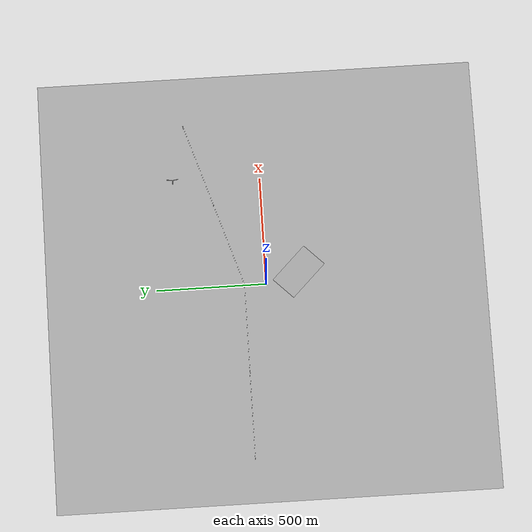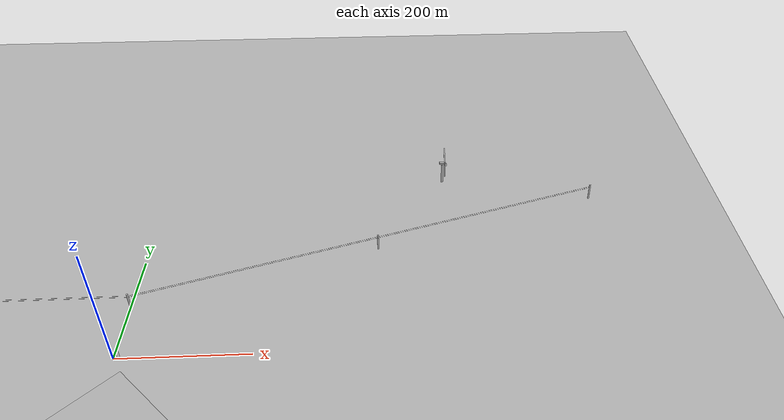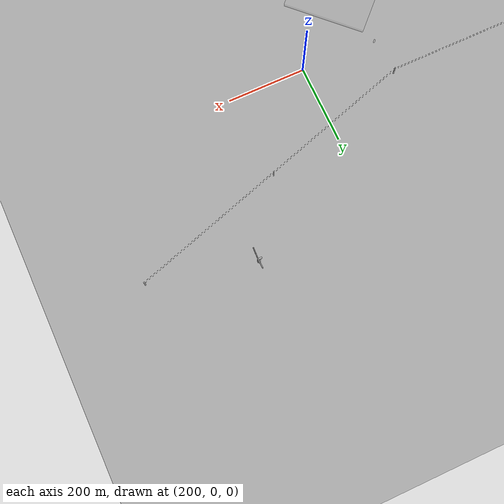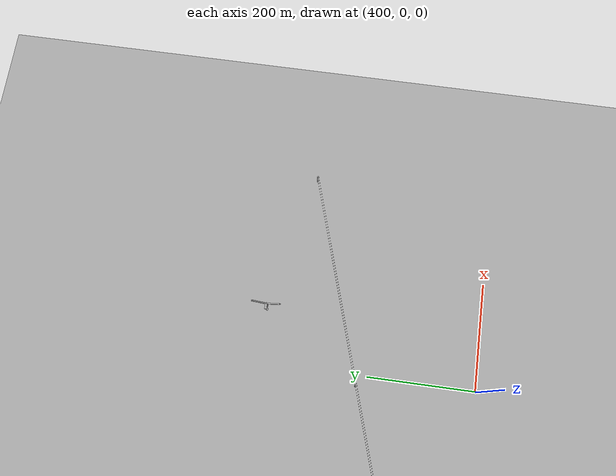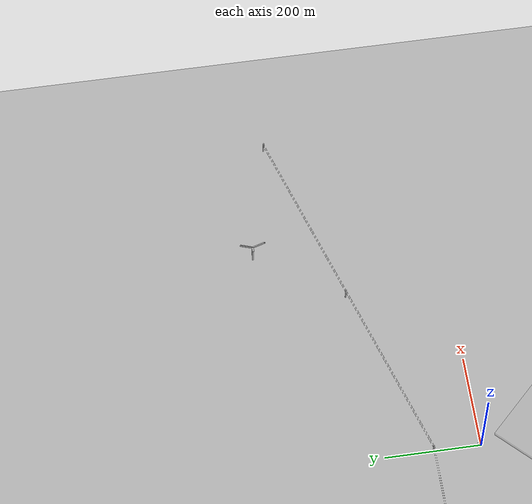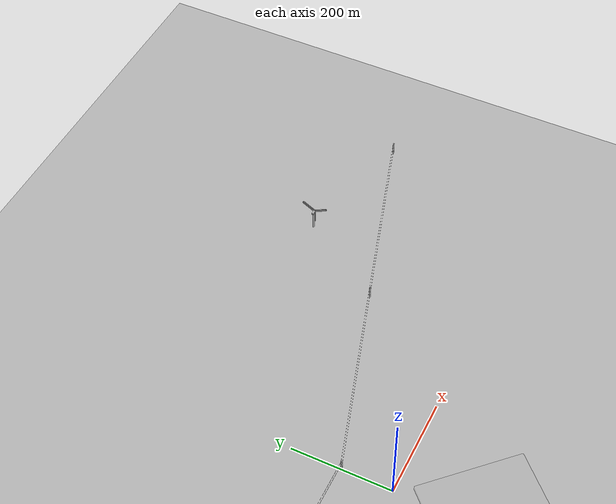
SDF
<sdf version="1.6">
 <world name="arenosillo">
  <physics type="ode">
   <ode>
    <solver><type>quick</type><iters>10</iters><sor>1.3</sor></solver>
    <constraints>
     <cfm>0</cfm>
     <erp>0.2</erp>
     <contact_max_correcting_vel>100</contact_max_correcting_vel>
     <contact_surface_layer>0.001</contact_surface_layer>
    </constraints>
   </ode>
   <max_step_size>0.002</max_step_size>
   <real_time_update_rate>500</real_time_update_rate>
   <real_time_factor>1</real_time_factor>
   <gravity>0 0 -9.8</gravity>
   <magnetic_field>6e-06 2.3e-05 -4.2e-05</magnetic_field>
  </physics>
  <include><uri>model://sun</uri></include>
  <include><uri>model://arenosillo</uri></include>
  <model name="WT_tower">
   <static>1</static>
   <link name="link">
    <collision name="collision">
     <geometry><cylinder><radius>1</radius><length>20</length></cylinder></geometry>
    </collision>
    <visual name="visual"><geometry><cylinder><radius>2</radius><length>40</length></cylinder></geometry></visual>
   </link>
   <pose>500 400 20 0 -0 0</pose>
  </model>
  <model name="WT_engine">
   <static>1</static>
   <link name="link">
    <collision name="collision"><geometry><box><size>4 4 10</size></box></geometry></collision>
    <visual name="visual"><geometry><box><size>4 4 10</size></box></geometry></visual>
   </link>
   <pose>500 400 42.5 0 1.57 0</pose>
  </model>
  <model name="WT_blade_center">
   <static>1</static>
   <link name="link">
    <collision name="collision"><geometry><sphere><radius>2</radius></sphere></geometry></collision>
    <visual name="visual"><geometry><sphere><radius>2</radius></sphere></geometry></visual>
   </link>
   <pose>505 400 42.5 0 1.57 0</pose>
  </model>
  <model name="WT_blade_1">
   <static>1</static>
   <link name="link">
    <collision name="collision"><geometry><box><size>2 4 30</size></box></geometry></collision>
    <visual name="visual"><geometry><box><size>2 4 30</size></box></geometry></visual>
   </link>
   <pose>505 400 27.5 0 -0 0</pose>
  </model>
  <model name="WT_blade_2">
   <static>1</static>
   <link name="link">
    <collision name="collision"><geometry><box><size>2 4 30</size></box></geometry></collision>
    <visual name="visual"><geometry><box><size>2 4 30</size></box></geometry></visual>
   </link>
   <pose>505 413 50 2.0944 -0 0</pose>
  </model>
  <model name="WT_blade_3">
   <static>1</static>
   <link name="link">
    <collision name="collision"><geometry><box><size>2 4 30</size></box></geometry></collision>
    <visual name="visual"><geometry><box><size>2 4 30</size></box></geometry></visual>
   </link>
   <pose>505 387 50 -2.0944 0 0</pose>
  </model>
  <model name="PL_base_1">
   <static>1</static>
   <link name="link">
    <collision name="collision">
     <geometry><cylinder><radius>1.5</radius><length>30</length></cylinder></geometry>
    </collision>
    <visual name="visual">
     <geometry><cylinder><radius>1.5</radius><length>30</length></cylinder></geometry>
    </visual>
   </link>
   <pose>-800 100 15 0 -0 0</pose>
  </model>
  <model name="PL_wire1_1_2">
   <static>1</static>
   <link name="link">
    <collision name="collision">
     <geometry><cylinder><radius>0.15</radius><length>400</length></cylinder></geometry>
    </collision>
    <visual name="visual">
     <geometry><cylinder><radius>0.15</radius><length>400</length></cylinder></geometry>
    </visual>
   </link>
   <pose>-600 101.5 25 3.14159 1.57079 3.14159</pose>
  </model>
  <model name="PL_wire2_1_2">
   <static>1</static>
   <link name="link">
    <collision name="collision">
     <geometry><cylinder><radius>0.15</radius><length>400</length></cylinder></geometry>
    </collision>
    <visual name="visual">
     <geometry><cylinder><radius>0.15</radius><length>400</length></cylinder></geometry>
    </visual>
   </link>
   <pose>-600 98.5 25 3.14159 1.57079 3.14159</pose>
  </model>
  <model name="PL_base_2">
   <static>1</static>
   <link name="link">
    <collision name="collision">
     <geometry><cylinder><radius>1.5</radius><length>30</length></cylinder></geometry>
    </collision>
    <visual name="visual">
     <geometry><cylinder><radius>1.5</radius><length>30</length></cylinder></geometry>
    </visual>
   </link>
   <pose>-400 100 15 0 -0 0</pose>
  </model>
  <model name="PL_wire1_2_3">
   <static>1</static>
   <link name="link">
    <collision name="collision">
     <geometry><cylinder><radius>0.15</radius><length>400</length></cylinder></geometry>
    </collision>
    <visual name="visual">
     <geometry><cylinder><radius>0.15</radius><length>400</length></cylinder></geometry>
    </visual>
   </link>
   <pose>-200 101.5 25 3.14159 1.57079 3.14159</pose>
  </model>
  <model name="PL_wire2_2_3">
   <static>1</static>
   <link name="link">
    <collision name="collision">
     <geometry><cylinder><radius>0.15</radius><length>400</length></cylinder></geometry>
    </collision>
    <visual name="visual">
     <geometry><cylinder><radius>0.15</radius><length>400</length></cylinder></geometry>
    </visual>
   </link>
   <pose>-200 98.5 25 3.14159 1.57079 3.14159</pose>
  </model>
  <model name="PL_base_3">
   <static>1</static>
   <link name="link">
    <collision name="collision">
     <geometry><cylinder><radius>1.5</radius><length>30</length></cylinder></geometry>
    </collision>
    <visual name="visual">
     <geometry><cylinder><radius>1.5</radius><length>30</length></cylinder></geometry>
    </visual>
   </link>
   <pose>0 100 15 0 -0 0.302885</pose>
  </model>
  <model name="PL_wire1_3_4">
   <static>1</static>
   <link name="link">
    <collision name="collision">
     <geometry><cylinder><radius>0.15</radius><length>400</length></cylinder></geometry>
    </collision>
    <visual name="visual">
     <geometry><cylinder><radius>0.15</radius><length>400</length></cylinder></geometry>
    </visual>
   </link>
   <pose>190.449 161.087 25 3.14159 1.57079 -2.83871</pose>
  </model>
  <model name="PL_wire2_3_4">
   <static>1</static>
   <link name="link">
    <collision name="collision">
     <geometry><cylinder><radius>0.15</radius><length>400</length></cylinder></geometry>
    </collision>
    <visual name="visual">
     <geometry><cylinder><radius>0.15</radius><length>400</length></cylinder></geometry>
    </visual>
   </link>
   <pose>191.343 158.223 25 3.14159 1.57079 -2.83871</pose>
  </model>
  <model name="PL_base_4">
   <static>1</static>
   <link name="link">
    <collision name="collision">
     <geometry><cylinder><radius>1.5</radius><length>30</length></cylinder></geometry>
    </collision>
    <visual name="visual">
     <geometry><cylinder><radius>1.5</radius><length>30</length></cylinder></geometry>
    </visual>
   </link>
   <pose>381.792 219.31 15 0 -0 0.302885</pose>
  </model>
  <model name="PL_wire1_4_5">
   <static>1</static>
   <link name="link">
    <collision name="collision">
     <geometry><cylinder><radius>0.15</radius><length>400</length></cylinder></geometry>
    </collision>
    <visual name="visual">
     <geometry><cylinder><radius>0.15</radius><length>400</length></cylinder></geometry>
    </visual>
   </link>
   <pose>572.241 280.397 25 3.14159 1.57079 -2.83871</pose>
  </model>
  <model name="PL_wire2_4_5">
   <static>1</static>
   <link name="link">
    <collision name="collision">
     <geometry><cylinder><radius>0.15</radius><length>400</length></cylinder></geometry>
    </collision>
    <visual name="visual">
     <geometry><cylinder><radius>0.15</radius><length>400</length></cylinder></geometry>
    </visual>
   </link>
   <pose>573.135 277.533 25 3.14159 1.57079 -2.83871</pose>
  </model>
  <model name="PL_base_5">
   <static>1</static>
   <link name="link">
    <collision name="collision">
     <geometry><cylinder><radius>1.5</radius><length>30</length></cylinder></geometry>
    </collision>
    <visual name="visual">
     <geometry><cylinder><radius>1.5</radius><length>30</length></cylinder></geometry>
    </visual>
   </link>
   <pose>763.584 338.62 15 0 -0 0.302885</pose>
  </model>
  <model name="Crop_Field">
   <static>1</static>
   <link name="link">
    <collision name="collision"><geometry><box><size>420 250 10</size></box></geometry></collision>
    <visual name="visual">
     <transparency>0.75</transparency>
     <geometry><box><size>210 125 10</size></box></geometry>
    </visual>
   </link>
   <pose>50 -150 5 0 0 -0.785398</pose>
  </model>
  <model name="Geofence_1">
   <static>1</static>
   <link name="link">
    <visual name="visual">
     <transparency>0.75</transparency>
     <geometry><cylinder><radius>2</radius><length>10</length></cylinder></geometry>
    </visual>
   </link>
   <pose>6 4 5 0 0 0</pose>
  </model>
 </world>
</sdf>

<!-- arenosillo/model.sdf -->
<sdf version="1.5">
  <model name="arenosillo">
    <static>true</static>
    <link name="floor">
      <collision name="collision">
        <geometry>
          <box>
            <size>2000 2000 .1</size>
          </box>
        </geometry>
      </collision>
      <visual name="visual">
        <cast_shadows>false</cast_shadows>
        <geometry>
          <box>
            <size>2000 2000 .1</size>
          </box>
        </geometry>
        <material>
          <script>
            <uri>model://arenosillo/materials/scripts</uri>
            <uri>model://arenosillo/materials/textures</uri>
            <name>arenosillo</name>
          </script>
        </material>
      </visual>
    </link>
  </model>
</sdf>
